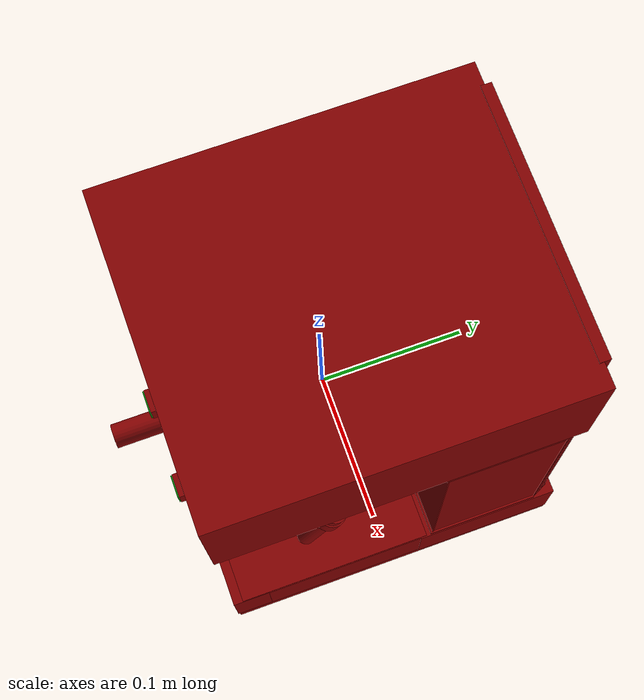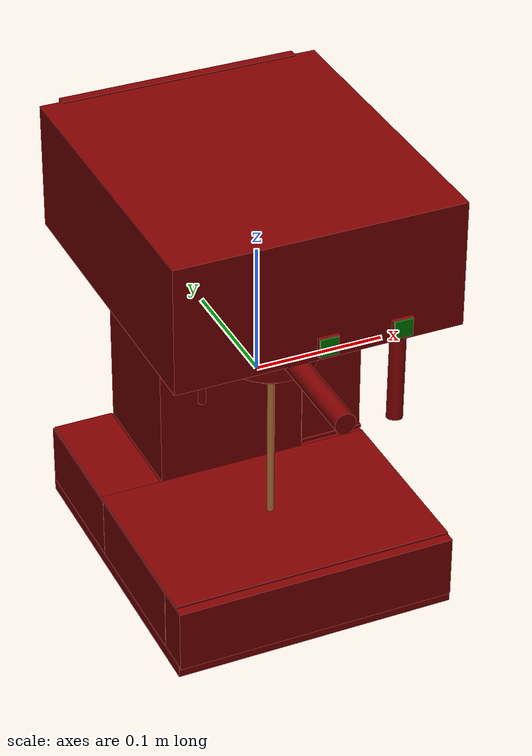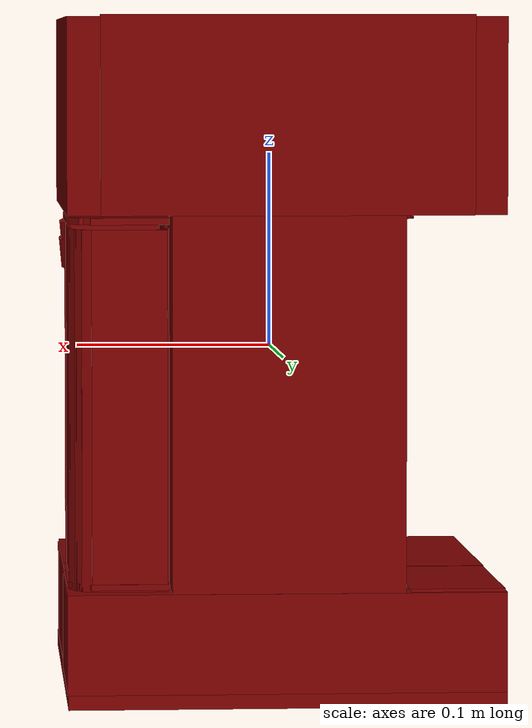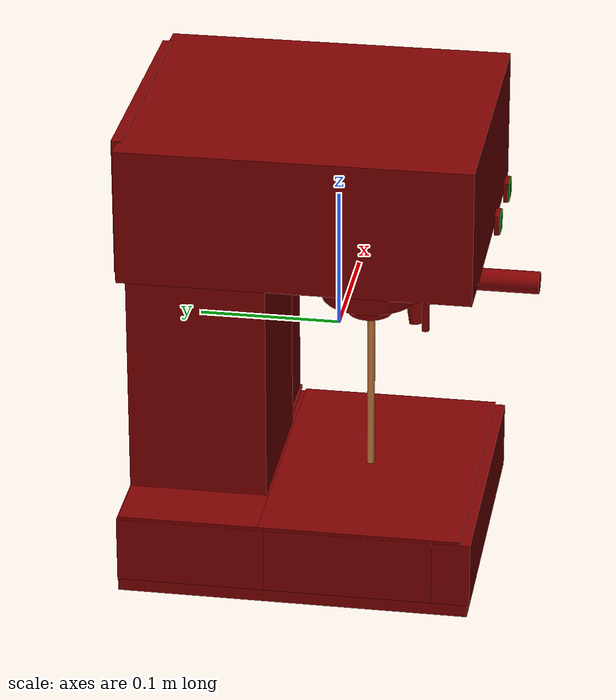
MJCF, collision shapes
<?xml version='1.0' encoding='UTF-8'?>
<mujoco model="model">
  <compiler angle="radian"/>
  <asset>
    <mesh file="visuals/Body001.obj" name="Body001_vis"/>
    <mesh file="visuals/Button001.obj" name="Button001_vis"/>
    <mesh file="visuals/Button002.obj" name="Button002_vis"/>
    <mesh file="visuals/Container001_Clear.obj" name="Container001_Clear_vis"/>
    <mesh file="visuals/Lever001.obj" name="Lever001_vis"/>
    <mesh file="visuals/Lever002.obj" name="Lever002_vis"/>
    <mesh file="visuals/Lid001.obj" name="Lid001_vis"/>
    <mesh file="visuals/Lid002.obj" name="Lid002_vis"/>
    <texture file="visuals/T_BC001.png" name="Body001_material" type="2d"/>
    <material name="Body001_material" rgba="1 1 1 1.0" texture="Body001_material" shininess="0.141421377658844" specular="0.3103448502657381"/>
    <texture file="visuals/T_BC001.png" name="Button001_material" type="2d"/>
    <material name="Button001_material" rgba="1 1 1 1.0" texture="Button001_material" shininess="0.141421377658844" specular="0.3103448502657381"/>
    <texture file="visuals/T_BC001.png" name="Button002_material" type="2d"/>
    <material name="Button002_material" rgba="1 1 1 1.0" texture="Button002_material" shininess="0.141421377658844" specular="0.3103448502657381"/>
    <texture file="visuals/T_BC001.png" name="Container001_Clear_material" type="2d"/>
    <material name="Container001_Clear_material" rgba="1 1 1 0.20000000298023224" texture="Container001_Clear_material" shininess="0.5" specular="0.3103448502657381"/>
    <texture file="visuals/T_BC001.png" name="Lid002_material" type="2d"/>
    <material name="Lid002_material" rgba="1 1 1 1.0" texture="Lid002_material" shininess="0.141421377658844" specular="0.3103448502657381"/>
    <texture file="visuals/T_BC001.png" name="Lever001_material" type="2d"/>
    <material name="Lever001_material" rgba="1 1 1 1.0" texture="Lever001_material" shininess="0.141421377658844" specular="0.3103448502657381"/>
    <texture file="visuals/T_BC001.png" name="Lever002_material" type="2d"/>
    <material name="Lever002_material" rgba="1 1 1 1.0" texture="Lever002_material" shininess="0.141421377658844" specular="0.3103448502657381"/>
    <texture file="visuals/T_BC001.png" name="Lid001_material" type="2d"/>
    <material name="Lid001_material" rgba="1 1 1 1.0" texture="Lid001_material" shininess="0.141421377658844" specular="0.3103448502657381"/>
  </asset>
  <default>
    <default class="visual">
      <geom conaffinity="0" contype="0" group="1" type="mesh"/>
    </default>
    <default class="collision">
      <geom group="0" rgba="0.5 0 0 0.5"/>
    </default>
    <default class="spawn">
      <geom group="0" rgba="1 1 1 0.5" contype="0" conaffinity="0"/>
      <site group="0" rgba="1 1 1 0.5"/>
    </default>
    <default class="region">
      <geom group="1" conaffinity="0" contype="0" rgba="0 1 0 0"/>
    </default>
  </default>
  <worldbody>
    <body>
      <body name="object">
        <geom class="collision" type="box" pos="0.05874991789460182 -0.1139071136713028 0.08558820933103561" size="0.006966045591980219 0.00037535582669079304 0.006966045591980219" quat="1.0 0.0 0.0 0.0" name="start_button_2" rgba="0.0 0.5 0 0.5"/>
        <geom class="collision" type="box" pos="0.0025168471038341522 -0.1139071136713028 0.08558822423219681" size="0.006966040004044771 0.00037535562296397984 0.006966040004044771" quat="1.0 0.0 0.0 0.0" name="start_button_1" rgba="0.0 0.5 0 0.5"/>
        <site type="cylinder" rgba="0.8 0.5 0.25 1" size="0.0027534279506653547 0.06827650219202042" pos="0.0007570073939859867 -0.02305021323263645 -0.04921126738190651" name="coffee_liquid"/>
        <site rgba="0 0 0 0" size="0.009999999776482582 0.009999999776482582" pos="0.0007570073939859867 -0.02305021323263645 -0.1107613816857338" name="receptacle_place_site"/>
        <geom mesh="Body001_vis" type="mesh" solimp="0.998 0.998 0.001" solref="0.001 1" density="100" friction="0.95 0.3 0.1" class="visual" material="Body001_material"/>
        <geom class="collision" type="box" pos="-0.0005932421190664172 0.0932740569114685 -0.017058240249753" size="0.05765221267938614 0.04950794205069542 0.09687575697898865" quat="1.0 0.0 0.0 0.0"/>
        <geom class="collision" type="box" pos="-0.00018781557446345687 0.017462117597460747 -0.16611447930335999" size="0.10849715769290924 0.12506034970283508 0.004501554183661938" quat="1.0 0.0 0.0 0.0"/>
        <geom class="collision" type="cylinder" pos="1.1175870895385742e-08 -0.02227507159113884 0.06281755864620209" size="0.04711209610104561 0.009757396765053272" quat="1.0 0.0 0.0 0.0"/>
        <geom class="collision" type="box" pos="-1.1107942555099726e-05 0.015682673081755638 0.1210864707827568" size="0.1083613932132721 0.12288384884595871 0.04876696690917015" quat="1.0 0.0 0.0 0.0"/>
        <geom class="collision" type="cylinder" pos="-0.07343633472919464 -0.0714133232831955 0.06801599264144897" size="0.009208731353282928 0.0047671194188296795" quat="1.0 0.0 0.0 0.0"/>
        <geom class="collision" type="cylinder" pos="-0.07330042123794556 -0.07126263529062271 0.05151331424713135" size="0.0027255238965153694 0.016732322052121162" quat="1.0 0.0 0.0 0.0"/>
        <geom class="collision" type="box" pos="-6.396003300324082e-05 0.13913197815418243 0.12154515832662582" size="0.09194281697273254 0.0036834750790148973 0.04922499507665634" quat="1.0 0.0 0.0 0.0"/>
        <geom class="collision" type="box" pos="-6.873489473946393e-05 -0.09521155804395676 -0.138515442609787" size="0.10811968892812729 0.013748661614954472 0.024802491068840027" quat="1.0 0.0 0.0 0.0"/>
        <geom class="collision" type="box" pos="0.00010340733570046723 0.09014715254306793 -0.138515442609787" size="0.10854717344045639 0.05280296877026558 0.024802491068840027" quat="1.0 0.0 0.0 0.0"/>
        <geom class="collision" type="box" pos="0.1010664775967598 -0.02168188989162445 -0.138515442609787" size="0.0072218975983560085 0.060076963156461716 0.024802491068840027" quat="1.0 0.0 0.0 0.0"/>
        <geom class="collision" type="box" pos="-0.10061879456043243 -0.02168188989162445 -0.138515442609787" size="0.007768660318106413 0.060077004134655 0.024802491068840027" quat="1.0 0.0 0.0 0.0"/>
        <body name="Button001">
          <joint axis="0.0 1.0 0.0" pos="0.002097361721098423 -0.10981644690036774 0.08552124351263046" limited="true" name="Button001_joint" range="0.0 0.003" type="slide" damping="1" frictionloss="1" armature=".01" stiffness="0.05"/>
          <geom mesh="Button001_vis" type="mesh" solimp="0.998 0.998 0.001" solref="0.001 1" density="100" friction="0.95 0.3 0.1" class="visual" material="Button001_material"/>
          <geom class="collision" type="box" pos="0.002585049718618393 -0.11173363775014877 0.08558820933103561" size="0.007447575218975544 0.001639458118006587 0.00717497942969203" quat="1.0 0.0 0.0 0.0"/>
        </body>
        <body name="Button002">
          <joint axis="0.0 1.0 0.0" pos="0.058760564774274826 -0.10981644690036774 0.08552322536706924" limited="true" name="Button002_joint" range="0.0 0.003" type="slide" damping="1" frictionloss="1" armature=".01" stiffness="0.05"/>
          <geom mesh="Button002_vis" type="mesh" solimp="0.998 0.998 0.001" solref="0.001 1" density="100" friction="0.95 0.3 0.1" class="visual" material="Button002_material"/>
          <geom class="collision" type="box" pos="0.05874991789460182 -0.11173363775014877 0.08558820933103561" size="0.007447592914104462 0.001639458118006587 0.00717502785846591" quat="1.0 0.0 0.0 0.0"/>
        </body>
        <body name="Container001_Clear">
          <joint axis="1.0 0.0 0.0" pos="0.08305118978023529 0.09394726157188416 -0.02260984107851982" limited="true" name="Container001_Clear_joint" range="0.0 0.1" type="slide" damping="1" frictionloss="1" armature=".01" stiffness="0.05"/>
          <geom mesh="Container001_Clear_vis" type="mesh" solimp="0.998 0.998 0.001" solref="0.001 1" density="100" friction="0.95 0.3 0.1" class="visual" material="Container001_Clear_material"/>
          <geom class="collision" type="box" pos="0.08310410380363464 0.08572981506586075 -0.11012037843465805" size="0.025214647874236107 0.040989432483911514 0.0014634223189204931" quat="1.0 0.0 0.0 0.0"/>
          <geom class="collision" type="box" pos="0.08038059622049332 0.13210752606391907 -0.11012037843465805" size="0.022069772705435753 0.005808140151202679 0.0014634138206019998" quat="1.0 0.0 0.0 0.0"/>
          <geom class="collision" type="box" pos="0.07760756462812424 0.13973334431648254 -0.11012037843465805" size="0.01928645558655262 0.002278632018715143 0.0014634107938036323" quat="1.0 0.0 0.0 0.0"/>
          <geom class="collision" type="box" pos="0.09934612363576889 0.13745549321174622 -0.11012037843465805" size="0.0041181533597409725 0.0010170741006731987 0.0014634138206019998" quat="0.9210992455482483 0.0 -0.0 -0.38932791352272034"/>
          <geom class="collision" type="box" pos="0.10335711389780045 0.13072101771831512 -0.11012037843465805" size="0.00542474677786231 0.0021503996104002 0.0014634138206019998" quat="0.8478994369506836 0.0 -0.0 -0.5301570892333984"/>
          <geom class="collision" type="box" pos="0.10660894960165024 0.08745115250349045 -0.02068805880844593" size="0.00037325519951991737 0.04079144075512886 0.08695712685585022" quat="1.0 0.0 0.0 0.0"/>
          <geom class="collision" type="box" pos="0.05898694694042206 0.09407564252614975 -0.02068805880844593" size="0.00037325519951991737 0.04741595685482025 0.08695712685585022" quat="1.0 0.0 0.0 0.0"/>
          <geom class="collision" type="box" pos="0.0830552875995636 0.04659707099199295 -0.02338382974267006" size="0.024447403848171234 0.00037325627636164427 0.0889972522854805" quat="1.0 0.0 0.0 0.0"/>
          <geom class="collision" type="box" pos="0.07787419855594635 0.14099140465259552 -0.02338382974267006" size="0.018640829250216484 0.00037325601442717016 0.08899717777967453" quat="1.0 0.0 0.0 0.0"/>
          <geom class="collision" type="box" pos="0.09879752993583679 0.13944396376609802 -0.02338382974267006" size="0.00037325514131225646 0.003024789970368147 0.08899710327386856" quat="0.8824782371520996 0.0 0.0 0.47035327553749084"/>
          <geom class="collision" type="box" pos="0.10276167839765549 0.13559922575950623 -0.02338382974267006" size="0.00037325514131225646 0.003024789970368147 0.08899710327386856" quat="0.9541560411453247 0.0 0.0 0.299309641122818"/>
          <geom class="collision" type="box" pos="0.1054362803697586 0.13053658604621887 -0.02338382974267006" size="0.00037325514131225646 0.004324527457356453 0.08899710327386856" quat="0.9762453436851501 0.0 0.0 0.21666808426380157"/>
          <body name="Lid002">
            <joint axis="0.0 0.0 1.0" pos="0.0830659419298172 0.09326598793268204 0.06989303976297379" limited="true" name="Lid002_joint" range="0.0 0.05" type="slide" damping="1" frictionloss="1" armature=".01" stiffness="0.05"/>
            <geom mesh="Lid002_vis" type="mesh" solimp="0.998 0.998 0.001" solref="0.001 1" density="100" friction="0.95 0.3 0.1" class="visual" material="Lid002_material"/>
            <geom class="collision" type="box" pos="0.08310410380363464 0.08572981506586075 0.06965099275112152" size="0.025214500725269318 0.040989432483911514 0.001658553839661181" quat="1.0 0.0 0.0 0.0"/>
            <geom class="collision" type="box" pos="0.08038059622049332 0.13210752606391907 0.06965099275112152" size="0.02206983044743538 0.005808140151202679 0.001658554538153112" quat="1.0 0.0 0.0 0.0"/>
            <geom class="collision" type="box" pos="0.07760756462812424 0.13973334431648254 0.06965099275112152" size="0.019286496564745903 0.0022786289919167757 0.0016585607081651688" quat="1.0 0.0 0.0 0.0"/>
            <geom class="collision" type="box" pos="0.09934612363576889 0.13745549321174622 0.06965099275112152" size="0.0041181533597409725 0.0010170741006731987 0.0016585607081651688" quat="0.9210992455482483 0.0 -0.0 -0.38932791352272034"/>
            <geom class="collision" type="box" pos="0.10335711389780045 0.13072101771831512 0.06965099275112152" size="0.00542474677786231 0.0021503996104002 0.0016585607081651688" quat="0.8478994369506836 0.0 -0.0 -0.5301570892333984"/>
          </body>
        </body>
        <body name="Lever001">
          <joint axis="0.0 0.0 1.0" pos="9.313225746154785e-09 -0.02251945063471794 0.042614277452230453" limited="true" name="Lever001_joint" range="-0.6108652381980153 0.6108652381980153" type="hinge" damping="1" frictionloss="1" armature=".01" stiffness="1"/>
          <geom mesh="Lever001_vis" type="mesh" solimp="0.998 0.998 0.001" solref="0.001 1" density="100" friction="0.95 0.3 0.1" class="visual" material="Lever001_material"/>
          <geom class="collision" type="cylinder" pos="1.30385160446167e-08 -0.02227507159113884 0.03854486346244812" size="0.03483882546424866 0.014806017279624939" quat="1.0 0.0 0.0 0.0"/>
          <geom class="collision" type="cylinder" pos="1.0269507022542257e-08 -0.02227506786584854 0.017221838235855103" size="0.016043733805418015 0.006630636751651764" quat="1.0 0.0 0.0 0.0"/>
          <geom class="collision" type="cylinder" pos="0.0016811536625027657 -0.09922417998313904 0.04067467153072357" size="0.007980529218912125 0.043242406100034714" quat="0.7071068286895752 -0.7071067690849304 0.0 0.0"/>
        </body>
        <body name="Lever002">
          <joint axis="0.0 0.0 1.0" pos="0.0834084004163742 0.0007806532084941864 0.014211911708116531" limited="true" name="Lever002_joint" range="-0.8726646259971648 0.8726646259971648" type="hinge" damping="1" frictionloss="1" armature=".01" stiffness="1"/>
          <geom mesh="Lever002_vis" type="mesh" solimp="0.998 0.998 0.001" solref="0.001 1" density="100" friction="0.95 0.3 0.1" class="visual" material="Lever002_material"/>
          <geom class="collision" type="cylinder" pos="0.0942072868347168 -0.03790319338440895 -0.0011793305166065693" size="0.006232133600860834 0.03994269669055939" quat="0.9950246810913086 -0.08569875359535217 0.05079718306660652 0.0011226164642721415"/>
          <geom class="collision" type="cylinder" pos="0.09842316061258316 -0.030772345140576363 0.039775557816028595" size="0.0076238722540438175 0.002011363161727786" quat="0.9950246810913086 -0.08569875359535217 0.05079718306660652 0.0011226164642721415"/>
          <geom class="collision" type="cylinder" pos="0.0993155762553215 -0.029262887313961983 0.04844488948583603" size="0.008817105554044247 0.007882191799581051" quat="0.9952847361564636 -0.08492116630077362 0.046750783920288086 0.0033245712984353304"/>
          <geom class="collision" type="cylinder" pos="0.10032543540000916 -0.027413925155997276 0.05915755778551102" size="0.00773863960057497 0.005704873241484165" quat="0.9952847361564636 -0.08492116630077362 0.046750783920288086 0.0033245712984353304"/>
          <geom class="collision" type="cylinder" pos="0.09479442238807678 -0.018807092681527138 0.05952712148427963" size="0.0033454473596066236 0.0034123961813747883" quat="0.6492936015129089 -0.7042173147201538 -0.08465540409088135 0.2744617462158203"/>
          <geom class="collision" type="cylinder" pos="0.09479442238807678 -0.018807092681527138 0.05952712148427963" size="0.0033454473596066236 0.0034123961813747883" quat="0.6492936015129089 -0.7042173147201538 -0.08465540409088135 0.2744617462158203"/>
          <geom class="collision" type="cylinder" pos="0.09086267650127411 -0.011787216179072857 0.05972927063703537" size="0.0027449135668575764 0.007847587577998638" quat="0.6492936015129089 -0.7042173147201538 -0.08465540409088135 0.2744617462158203"/>
          <geom class="collision" type="cylinder" pos="0.08640097826719284 -0.00405314564704895 0.060360174626111984" size="0.002790541388094425 0.0017801998183131218" quat="0.7408037185668945 -0.5779874920845032 -0.06241149827837944 0.3365190625190735"/>
          <geom class="collision" type="cylinder" pos="0.08511991053819656 -0.001833848305977881 0.06195886805653572" size="0.0027905411552637815 0.0017801997018978" quat="0.8217336535453796 -0.4512673616409302 -0.040322210639715195 0.3456669747829437"/>
          <geom class="collision" type="cylinder" pos="0.08424760401248932 -0.00017659590230323374 0.06404934078454971" size="0.002790540922433138 0.0017801998183131218" quat="0.8706451654434204 -0.32500365376472473 0.007698079105466604 0.3691752552986145"/>
          <geom class="collision" type="cylinder" pos="0.08386820554733276 0.0002972936490550637 0.06636917591094971" size="0.002790540922433138 0.0017801998183131218" quat="0.9165980219841003 -0.10572268813848495 0.0006432924419641495 0.3855780065059662"/>
          <geom class="collision" type="cylinder" pos="0.08378227800130844 0.0003207933041267097 0.06751757115125656" size="0.0027905411552637815 0.0017801998183131218" quat="0.9186862707138062 -0.0408644936978817 0.02281758561730385 0.39220523834228516"/>
        </body>
        <body name="Lid001">
          <joint axis="0.0 0.0 1.0" pos="0.00043612532317638397 0.020381450653076172 -0.1130049005150795" limited="true" name="Lid001_joint" range="0.0 0.06" type="slide" damping="1" frictionloss="1" armature=".01" stiffness="0.05"/>
          <geom mesh="Lid001_vis" type="mesh" solimp="0.998 0.998 0.001" solref="0.001 1" density="100" friction="0.95 0.3 0.1" class="visual" material="Lid001_material"/>
          <geom class="collision" type="box" pos="-0.08387213200330734 0.09158586710691452 -0.11269403249025345" size="0.0235506109893322 0.049905505031347275 0.0007897086325101554" quat="1.0 0.0 0.0 0.0"/>
          <geom class="collision" type="box" pos="4.597008228302002e-05 -0.030066579580307007 -0.11247492581605911" size="0.10777664929628372 0.07174772024154663 0.0007897086325101554" quat="1.0 0.0 0.0 0.0"/>
        </body>
        <geom class="region" name="reg_main" type="box" pos="0.0 0.017163224518299103 3.725290298461914e-09" size="0.10876321792602539 0.12582379579544067 0.17092379927635193"/>
      </body>
    </body>
  </worldbody>
  <actuator>
    <motor name="Button001_joint_actuator" joint="Button001_joint" gear="0.5"/>
    <motor name="Button002_joint_actuator" joint="Button002_joint" gear="0.5"/>
    <motor name="Container001_Clear_joint_actuator" joint="Container001_Clear_joint" gear="10"/>
    <motor name="Lever001_joint_actuator" joint="Lever001_joint" gear="10"/>
    <motor name="Lever002_joint_actuator" joint="Lever002_joint" gear="10"/>
    <motor name="Lid001_joint_actuator" joint="Lid001_joint" gear="10"/>
    <motor name="Lid002_joint_actuator" joint="Lid002_joint" gear="10"/>
  </actuator>
</mujoco>
